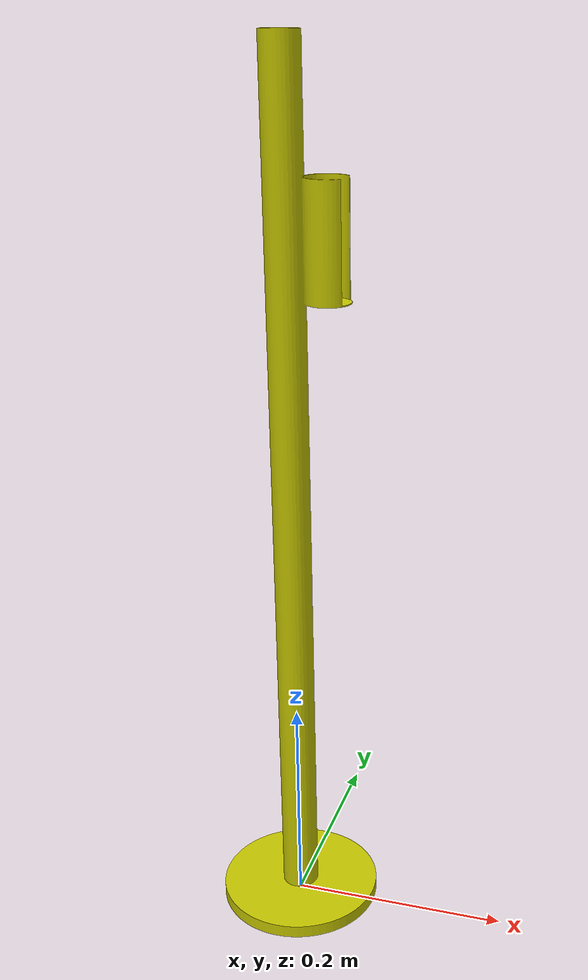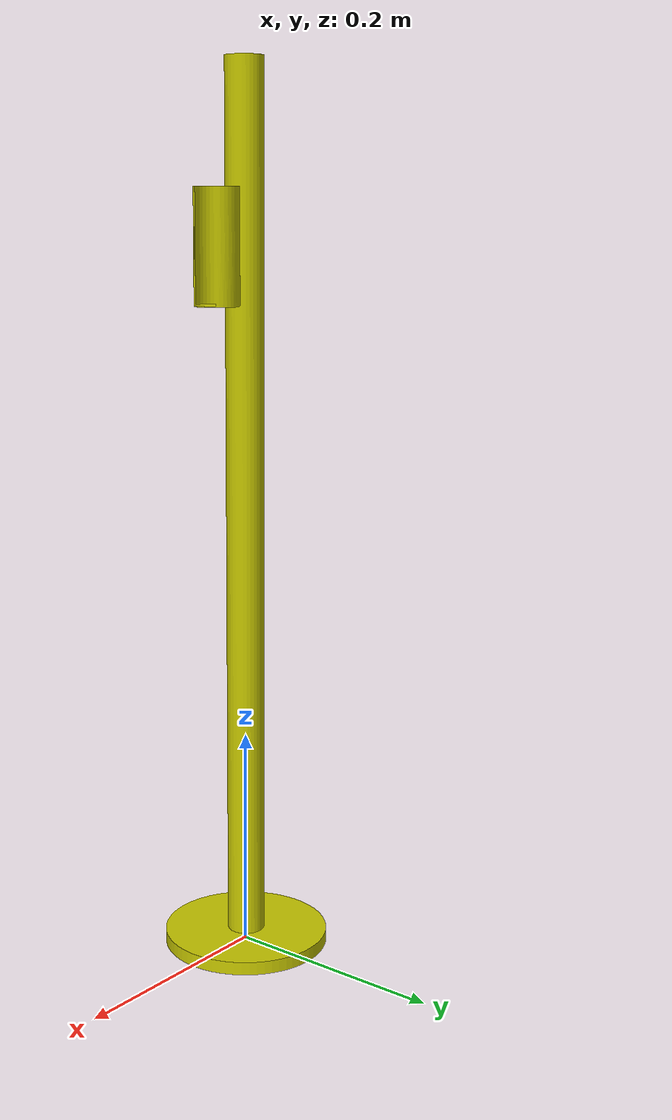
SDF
<?xml version="1.0"?>
<sdf version="1.5">
	<model name="c_mission">
		<link name="c_mission">
			<collision name="c_missioncol">
				<pose>
					0 0 0 0 0 0
				</pose>
				<geometry>
					<mesh>
						<uri>
							model://c_mission/c_mission.dae
						</uri>
					</mesh>
				</geometry>
			</collision>
			<visual name="c_missionvis">
				<pose>
					0 0 0 0 0 0
				</pose>
				<geometry>
					<mesh>
						<uri>
							model://c_mission/c_mission.dae
						</uri>
					</mesh>
				</geometry>
			</visual>
		</link>
	</model>
</sdf>
